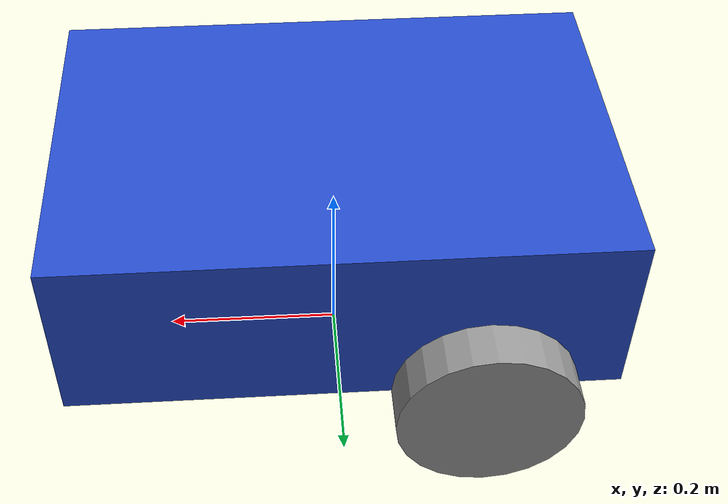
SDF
<sdf version='1.11'>
  <model name='my_robot'>
    <link name='base_footprint'>
      <inertial>
        <pose>0.033333333333333333 0 0.17499999999999999 0 0 0</pose>
        <mass>6</mass>
        <inertia>
          <ixx>0.68941666666666679</ixx>
          <ixy>0</ixy>
          <ixz>0.024999999999999991</ixz>
          <iyy>0.92275000000000007</iyy>
          <iyz>0</iyz>
          <izz>0.37066666666666681</izz>
        </inertia>
      </inertial>
      <collision name='base_footprint_fixed_joint_lump__base_link_collision'>
        <pose>0 0 0.20000000000000001 0 0 0</pose>
        <geometry>
          <box>
            <size>0.59999999999999998 0.40000000000000002 0.20000000000000001</size>
          </box>
        </geometry>
        <surface>
          <contact>
            <ode/>
          </contact>
          <friction>
            <ode/>
          </friction>
        </surface>
      </collision>
      <collision name='base_footprint_fixed_joint_lump__caster_wheel_link_collision_1'>
        <pose>0.20000000000000001 0 0.050000000000000003 0 0 0</pose>
        <geometry>
          <sphere>
            <radius>0.050000000000000003</radius>
          </sphere>
        </geometry>
        <surface>
          <contact>
            <ode/>
          </contact>
          <friction>
            <ode>
              <mu>0.10000000000000001</mu>
              <mu2>0.10000000000000001</mu2>
            </ode>
          </friction>
        </surface>
      </collision>
      <visual name='base_footprint_fixed_joint_lump__base_link_visual'>
        <pose>0 0 0.20000000000000001 0 0 0</pose>
        <geometry>
          <box>
            <size>0.59999999999999998 0.40000000000000002 0.20000000000000001</size>
          </box>
        </geometry>
        <material>
          <script>
            <name>Gazebo/Blue</name>
            <uri>file://media/materials/scripts/gazebo.material</uri>
          </script>
          <diffuse>0 0 0.625 1</diffuse>
          <ambient>0 0 0.625 1</ambient>
        </material>
      </visual>
      <visual name='base_footprint_fixed_joint_lump__caster_wheel_link_visual_1'>
        <pose>0.20000000000000001 0 0.050000000000000003 0 0 0</pose>
        <geometry>
          <sphere>
            <radius>0.050000000000000003</radius>
          </sphere>
        </geometry>
        <material>
          <script>
            <name>Gazebo/Red</name>
            <uri>file://media/materials/scripts/gazebo.material</uri>
          </script>
          <diffuse>0.625 0.625 0.625 1</diffuse>
          <ambient>0.625 0.625 0.625 1</ambient>
        </material>
      </visual>
    </link>
    <joint name='base_left_wheel_joint' type='revolute'>
      <pose relative_to='base_footprint'>-0.14999999999999999 0.22500000000000001 0.10000000000000001 0 0 0</pose>
      <parent>base_footprint</parent>
      <child>left_wheel_link</child>
      <axis>
        <xyz>0 1 0</xyz>
        <limit>
          <lower>-inf</lower>
          <upper>inf</upper>
        </limit>
        <dynamics>
          <spring_reference>0</spring_reference>
          <spring_stiffness>0</spring_stiffness>
        </dynamics>
      </axis>
    </joint>
    <link name='left_wheel_link'>
      <pose relative_to='base_left_wheel_joint'>0 0 0 0 0 0</pose>
      <inertial>
        <pose>0 0 0 1.5707963267948959 0 0</pose>
        <mass>1</mass>
        <inertia>
          <ixx>0.010833333333333341</ixx>
          <ixy>0</ixy>
          <ixz>0</ixz>
          <iyy>0.010833333333333341</iyy>
          <iyz>0</iyz>
          <izz>0.02</izz>
        </inertia>
      </inertial>
      <collision name='left_wheel_link_collision'>
        <pose>0 0 0 1.5707963267948959 0 0</pose>
        <geometry>
          <cylinder>
            <length>0.050000000000000003</length>
            <radius>0.10000000000000001</radius>
          </cylinder>
        </geometry>
        <surface>
          <contact>
            <ode/>
          </contact>
          <friction>
            <ode/>
          </friction>
        </surface>
      </collision>
      <visual name='left_wheel_link_visual'>
        <pose>0 0 0 1.5707963267948959 0 0</pose>
        <geometry>
          <cylinder>
            <length>0.050000000000000003</length>
            <radius>0.10000000000000001</radius>
          </cylinder>
        </geometry>
        <material>
          <script>
            <name>Gazebo/Grey</name>
            <uri>file://media/materials/scripts/gazebo.material</uri>
          </script>
          <diffuse>0.625 0.625 0.625 1</diffuse>
          <ambient>0.625 0.625 0.625 1</ambient>
        </material>
      </visual>
    </link>
    <joint name='base_right_wheel_joint' type='revolute'>
      <pose relative_to='base_footprint'>-0.14999999999999999 -0.22500000000000001 0.10000000000000001 0 0 0</pose>
      <parent>base_footprint</parent>
      <child>right_wheel_link</child>
      <axis>
        <xyz>0 1 0</xyz>
        <limit>
          <lower>-inf</lower>
          <upper>inf</upper>
        </limit>
        <dynamics>
          <spring_reference>0</spring_reference>
          <spring_stiffness>0</spring_stiffness>
        </dynamics>
      </axis>
    </joint>
    <link name='right_wheel_link'>
      <pose relative_to='base_right_wheel_joint'>0 0 0 0 0 0</pose>
      <inertial>
        <pose>0 0 0 1.5707963267948959 0 0</pose>
        <mass>1</mass>
        <inertia>
          <ixx>0.010833333333333341</ixx>
          <ixy>0</ixy>
          <ixz>0</ixz>
          <iyy>0.010833333333333341</iyy>
          <iyz>0</iyz>
          <izz>0.02</izz>
        </inertia>
      </inertial>
      <collision name='right_wheel_link_collision'>
        <pose>0 0 0 1.5707963267948959 0 0</pose>
        <geometry>
          <cylinder>
            <length>0.050000000000000003</length>
            <radius>0.10000000000000001</radius>
          </cylinder>
        </geometry>
        <surface>
          <contact>
            <ode/>
          </contact>
          <friction>
            <ode/>
          </friction>
        </surface>
      </collision>
      <visual name='right_wheel_link_visual'>
        <pose>0 0 0 1.5707963267948959 0 0</pose>
        <geometry>
          <cylinder>
            <length>0.050000000000000003</length>
            <radius>0.10000000000000001</radius>
          </cylinder>
        </geometry>
        <material>
          <script>
            <name>Gazebo/Grey</name>
            <uri>file://media/materials/scripts/gazebo.material</uri>
          </script>
          <diffuse>0.625 0.625 0.625 1</diffuse>
          <ambient>0.625 0.625 0.625 1</ambient>
        </material>
      </visual>
    </link>
    <plugin name='gz::sim::systems::DiffDrive' filename='gz-sim-diff-drive-system'>
      <update_rate>50</update_rate>
      <left_joint>base_left_wheel_joint</left_joint>
      <right_joint>base_right_wheel_joint</right_joint>
      <wheel_separation>0.45</wheel_separation>
      <wheel_radius>0.1</wheel_radius>
      <command_topic>cmd_vel</command_topic>
      <odom_topic>odom</odom_topic>
      <frame_id>odom</frame_id>
      <child_frame_id>base_footprint</child_frame_id>
    </plugin>
    <plugin name='gz::sim::systems::JointStatePublisher' filename='gz-sim-joint-state-publisher-system'>
      <joint_name>base_left_wheel_joint</joint_name>
      <joint_name>base_right_wheel_joint</joint_name>
    </plugin>
    <frame name='base_caster_wheel_joint' attached_to='base_link'>
      <pose>0.20000000000000001 0 -0.050000000000000003 0 0 0</pose>
    </frame>
    <frame name='caster_wheel_link' attached_to='base_caster_wheel_joint'>
      <pose>0 0 0 0 0 0</pose>
    </frame>
    <frame name='base_joint' attached_to='base_footprint'>
      <pose>0 0 0.10000000000000001 0 0 0</pose>
    </frame>
    <frame name='base_link' attached_to='base_joint'>
      <pose>0 0 0 0 0 0</pose>
    </frame>
  </model>
</sdf>
